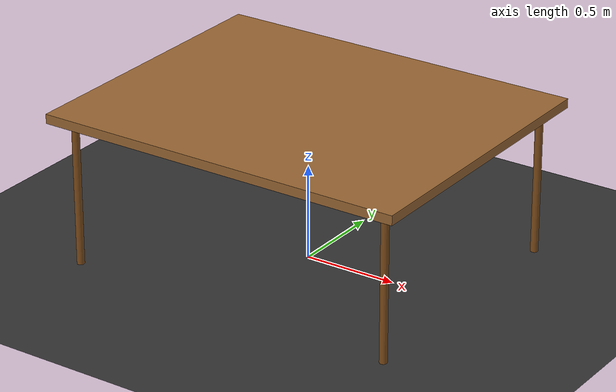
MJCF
<mujoco>
    <worldbody>
        <light pos="0 0 3" />
        <geom name="floor" type="plane" size="5 5 0.1" rgba="0.2 0.2 0.2 1" />

        <body name="table" pos="0 0 0.8">
            <!-- Table top -->
            <geom name="tabletop" type="box" size="1.0 0.8 0.025" rgba="0.6 0.4 0.2 1" />

            <!-- Table legs -->
            <geom name="leg1" type="cylinder" size="0.02 0.4" pos="0.9 0.7 -0.4"
                rgba="0.5 0.3 0.1 1" />
            <geom name="leg2" type="cylinder" size="0.02 0.4" pos="0.9 -0.7 -0.4"
                rgba="0.5 0.3 0.1 1" />
            <geom name="leg3" type="cylinder" size="0.02 0.4" pos="-0.9 0.7 -0.4"
                rgba="0.5 0.3 0.1 1" />
            <geom name="leg4" type="cylinder" size="0.02 0.4" pos="-0.9 -0.7 -0.4"
                rgba="0.5 0.3 0.1 1" />
        </body>
    </worldbody>
</mujoco>
